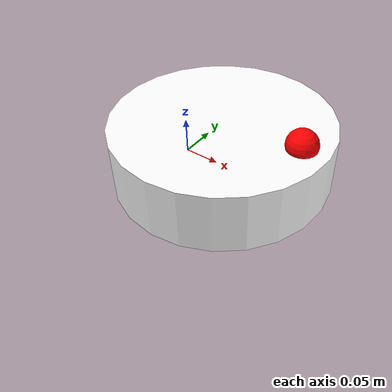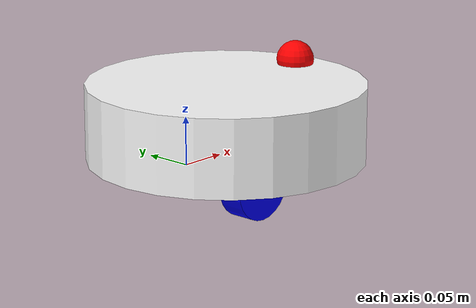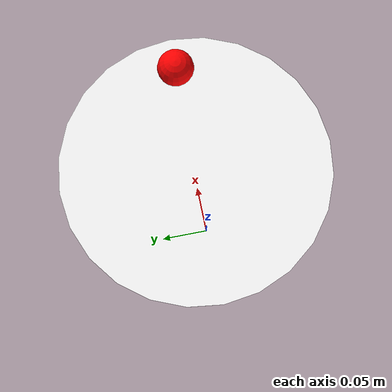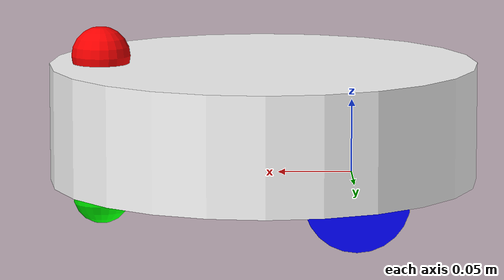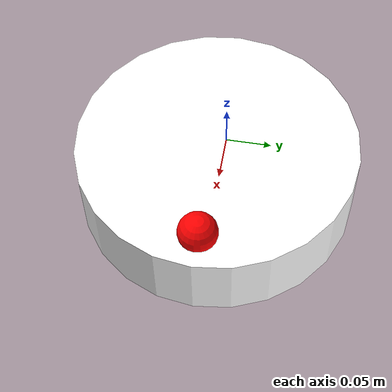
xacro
<?xml version="1.0"?>
<robot xmlns:xacro="http://www.ros.org/wiki/xacro"  name="robot">

    <xacro:include filename= "robot_core.xacro"/> <!--Base model of robo and wheels-->

    <xacro:include filename= "ros2_control_real.xacro"/>  <!-- Real robot with ros2 control -->

</robot>

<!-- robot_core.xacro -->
<robot xmlns:xacro="http://www.ros.org/wiki/xacro">

<xacro:include filename="inertial_macros.xacro"/>

<material name="white">
    <color rgba="1 1 1 1" />
</material>

<material name="red">
    <color rgba="1 0 0 1" />
</material>

<material name="green">
    <color rgba="0 1 0 1" />
</material>

<material name="blue">
    <color rgba="0 0 1 1" />
</material>

<!--BASE LINK-->

<link name="base_link">

</link>

<!--BASE FOOTPRINT-->

<joint name="base_footprint_link" type="fixed">
    <parent link="base_link"/>
    <child link="base_footprint"/>
    <origin xyz="0.0 0.0 0.0" rpy="0.0 0.0 0.0"/>
</joint>

<link name="base_footprint">

</link>

<!--CHASSIS LINK-->

<joint name="chassis_joint" type="fixed">
    <parent link="base_link"/>
    <child link="chassis"/>
    <origin xyz= "0 0 0"/>
</joint>

<link name="chassis">
    <visual>
        <origin  xyz="0.06 0 0.035"/>
        <geometry>
            <cylinder radius="0.145" length="0.08"/>
        </geometry>
        <material name="white">

        </material>
    </visual>

    <collision>
        <origin  xyz="0.06 0 0.035"/>
        <geometry>
            <cylinder radius="0.145" length="0.08"/>
        </geometry>
    </collision>
    <xacro:inertial_box mass="0.5" x="0.3" y="0.3" z="0.15">
        <origin xyz="0.15 0.0 0.075" rpy="0 0 0"/>
    </xacro:inertial_box>
</link>

<gazebo reference="chassis">
    <material>Gazebo/White</material>
</gazebo>

<!-- LEFT WHEEL LINK -->

<joint name="left_wheel_joint" type="continuous">
    <parent link="base_link"/>
    <child link="left_wheel"/>
    <origin xyz=" 0 0.09 0.00" rpy="-${pi/2} 0.0 0.0"/>
    <axis xyz="0.0 0.0 1"/>
</joint>

<link name="left_wheel">
    <visual>
        <geometry>
            <cylinder radius="0.035" length="0.026"/>
        </geometry>
        <material name="blue"/>
    </visual>

    <collision>
        <geometry>
            <cylinder radius="0.035" length="0.026"/>
        </geometry>
    </collision>
    <xacro:inertial_cylinder mass="0.02" radius="0.03" length="0.01">
        <origin xyz="0.0 0.0 0.0" rpy="0.0 0.0 0.0"/>
    </xacro:inertial_cylinder>
</link>

<gazebo reference="left_wheel">
    <material>Gazebo/Blue</material>
</gazebo>

<!-- RIGHT WHEEL LINK-->

<joint name="right_wheel_joint" type="continuous">
    <parent link="base_link"/>
    <child link="right_wheel"/>
    <origin xyz=" 0 -0.09 0.00" rpy="-${pi/2} 0.0 0.0"/>
    <axis xyz="0.0 0.0 1"/>
</joint>

<link name="right_wheel">
    <visual>
        <geometry>
            <cylinder radius="0.035" length="0.026"/>
        </geometry>
        <material name="blue"/>
    </visual>

    <collision>
        <geometry>
            <cylinder radius="0.035" length="0.026"/>
        </geometry>
    </collision>
    <xacro:inertial_cylinder mass="0.02" radius="0.03" length="0.01">
        <origin xyz="0.0 0.0 0.0" rpy="0.0 0.0 0.0"/>
    </xacro:inertial_cylinder>
</link>

<gazebo reference="right_wheel">
    <material>Gazebo/Blue</material>
</gazebo>

<!--CASTER WHEEL LINK-->

<joint name="caster_wheel_joint" type="fixed">
    <parent link="chassis"/>
    <child link="caster_wheel"/>
    <origin xyz="0.17 0 -0.015"/>
</joint>

<link name="caster_wheel">
    <visual>
        <geometry>
            <sphere radius="0.02"/>
        </geometry>
        <material name="green"/>
    </visual>

    <collision>
        <geometry>
            <sphere radius="0.02"/>
        </geometry>
    </collision>
    <xacro:inertial_sphere mass="0.02" radius="0.03">
        <origin xyz="0.0 0.0 0.0" rpy="0.0 0.0 0.0"/>
    </xacro:inertial_sphere>
</link>

<gazebo reference="caster_wheel">
    <material>Gazebo/Green</material>
    <mu1 value="0.001"/>
    <mu2 value="0.001"/>
</gazebo>

<!--FRONT MARKER LINK-->

<joint name="front_marker_joint" type="fixed">
    <parent link="chassis"/>
    <child link="front_marker"/>
    <origin xyz="0.17 0 0.08"/>
</joint>

<link name="front_marker">
    <visual>
        <geometry>
            <sphere radius="0.02"/>
        </geometry>
        <material name="red"/>
    </visual>

    <collision>
        <geometry>
            <sphere radius="0.02"/>
        </geometry>
    </collision>
    <xacro:inertial_sphere mass="0.02" radius="0.03">
        <origin xyz="0.0 0.0 0.0" rpy="0.0 0.0 0.0"/>
    </xacro:inertial_sphere>
</link>

<gazebo reference="front_marker">
    <material>Gazebo/Red</material>
    <mu1 value="0.001"/>
    <mu2 value="0.001"/>
</gazebo>

</robot>
